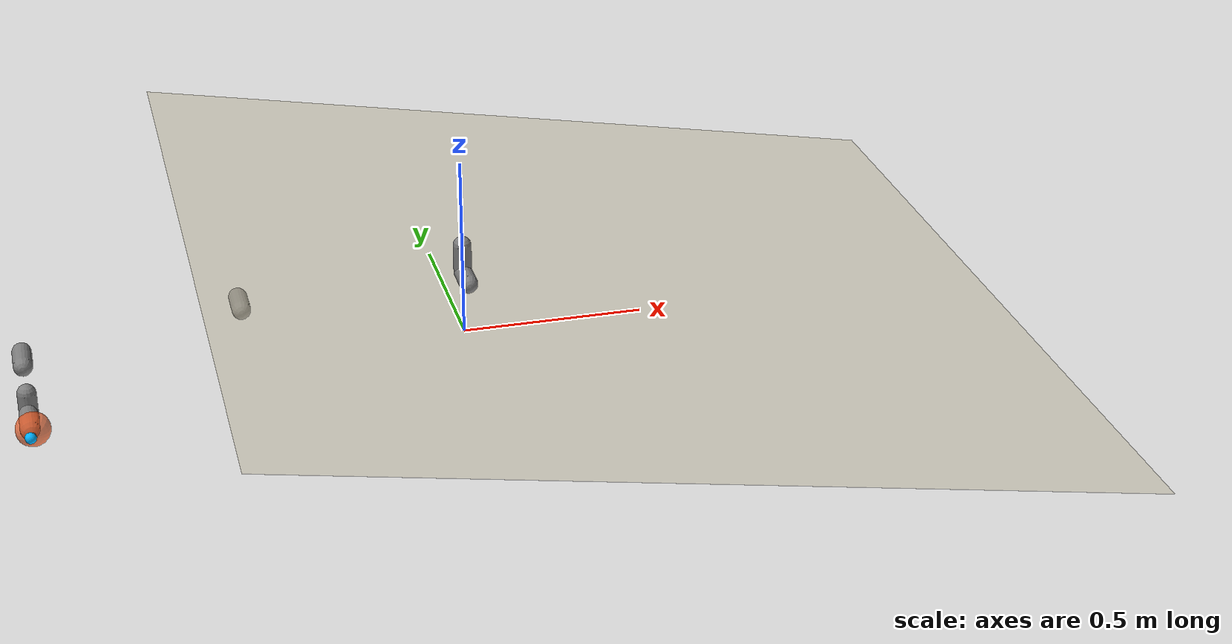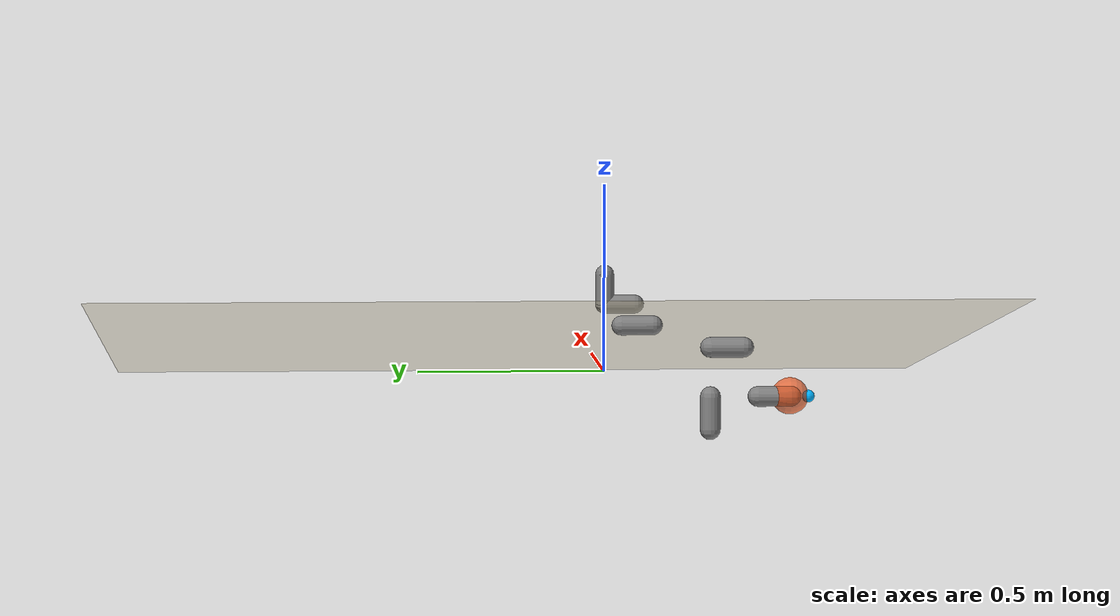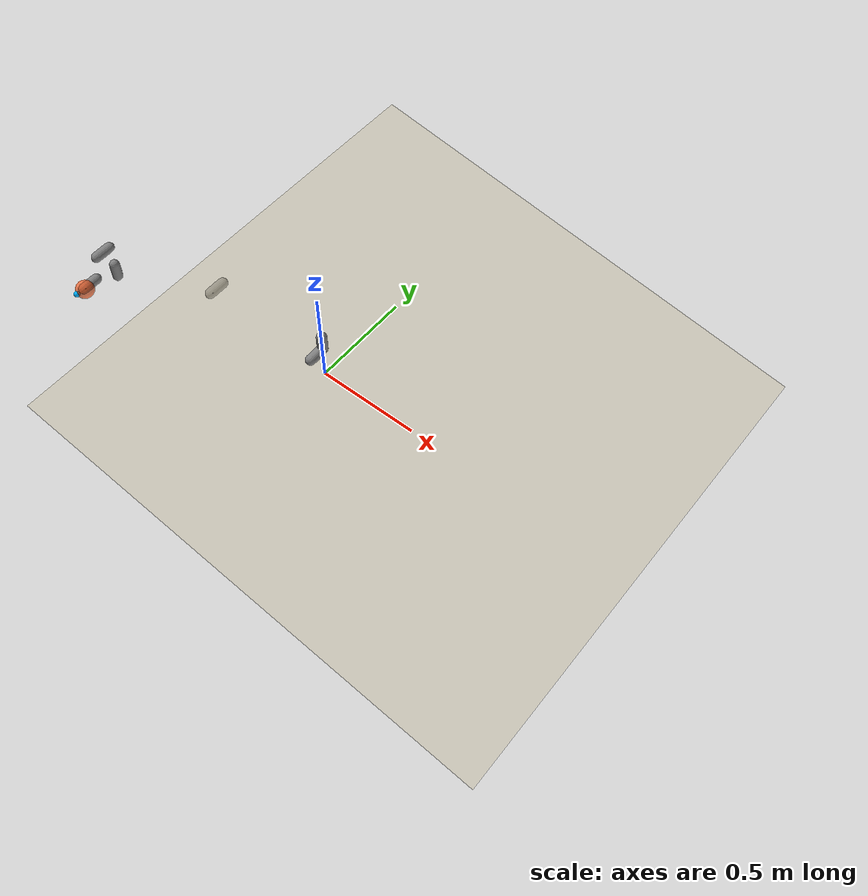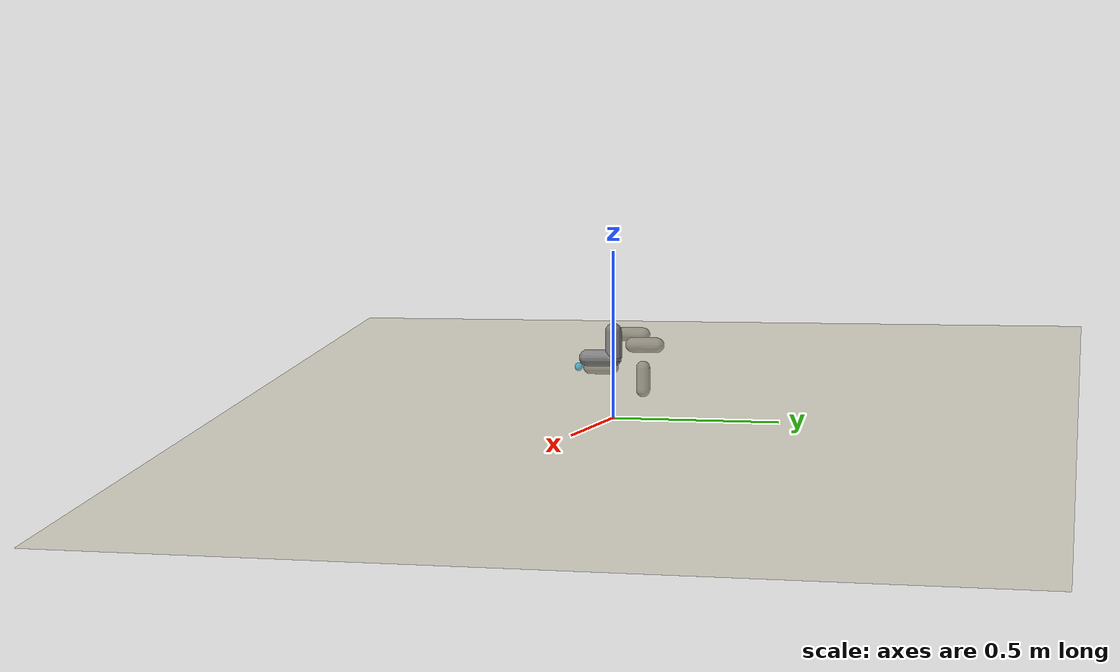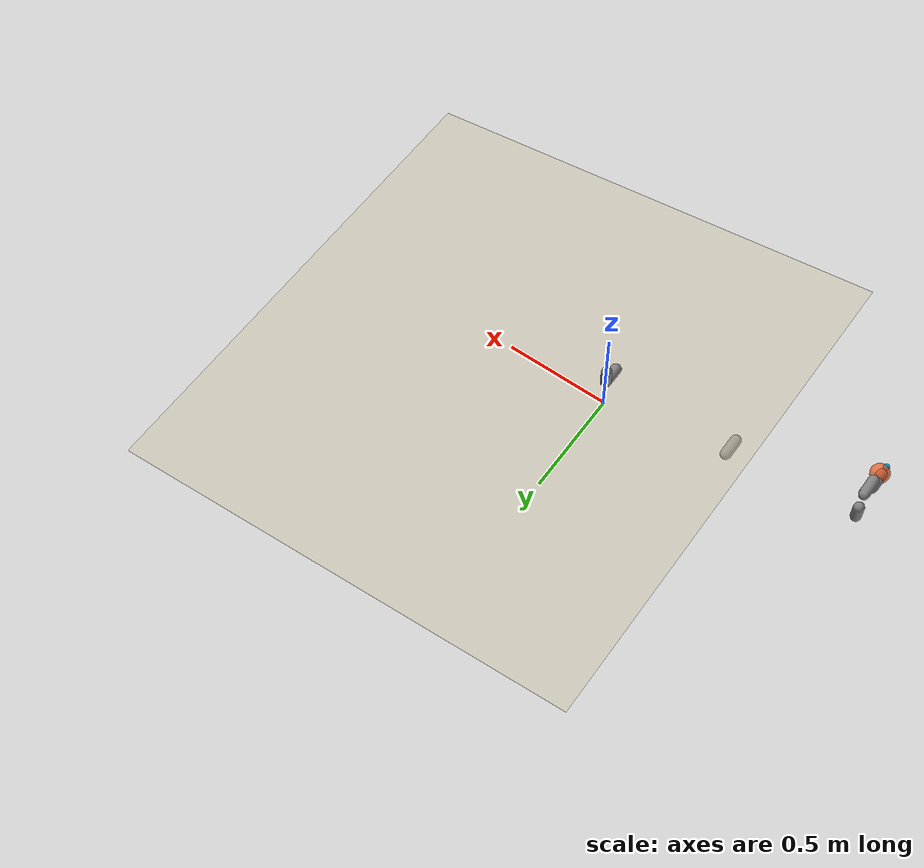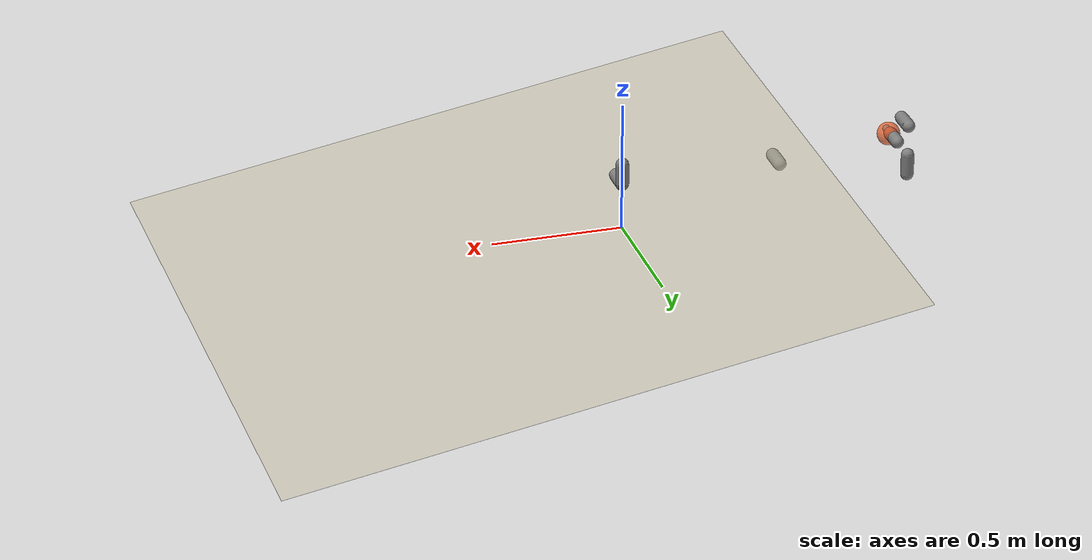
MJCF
<mujoco model="ur10e_calibrated_20260525T1641_diagnostic_contact_overlay">
  <compiler angle="radian" autolimits="true" />
  <option timestep="0.002" gravity="0 0 -9.81" />
  <default>
    <joint damping="8" armature="0.02" limited="true" />
    <geom type="capsule" size="0.025" density="900" friction="1 0.005 0.0001" contype="0" conaffinity="0" />
  </default>
  <worldbody>
    <geom name="diagnostic_contact_plane_unaccepted" type="plane" pos="0.45619207276771306 0.16055309891221037 0.044663962326398465" euler="0 0.17453292519999999 0" size="1.2 1.2 0.02" rgba="0.78 0.74 0.62 0.45" friction="1 0.005 0.0001" contype="1" conaffinity="1" />
    <body name="base" pos="0 0 0">
      <body name="shoulder_link" pos="0 0 0.18089377267755391" quat="0.99999999999999445 0 0 -1.0547108770034266e-07">
        <joint name="shoulder_pan_joint" axis="0 0 1" range="-6.283185307179586 6.283185307179586" />
        <geom name="shoulder_pan_joint_primitive" fromto="0 0 0 0 0 0.08" contype="0" conaffinity="0" />
        <body name="upper_arm_link" pos="2.0416891277915125e-05 0 0" quat="0.70688438899691852 0.70732910345355271 1.5242124891222752e-07 1.5232541808530616e-07">
          <joint name="shoulder_lift_joint" axis="0 0 1" range="-6.283185307179586 6.283185307179586" />
          <geom name="shoulder_lift_joint_primitive" fromto="0 0 0 0 0 0.08" contype="0" conaffinity="0" />
          <body name="forearm_link" pos="-0.61231665716315808 0 0" quat="0.99999970594436793 -0.00071323727481014244 -0.00028178440713331278 -1.1469642345861922e-06">
            <joint name="elbow_joint" axis="0 0 1" range="-3.141592653589793 3.141592653589793" />
            <geom name="elbow_joint_primitive" fromto="0 0 0 0 0 0.08" contype="0" conaffinity="0" />
            <body name="wrist_1_link" pos="-0.57126101201600177 -0.00056244594997925451 0.17399893501546188" quat="0.9999985897803042 0.0016162278654918167 0.00045633505967977484 -1.7896990794635787e-06">
              <joint name="wrist_1_joint" axis="0 0 1" range="-6.283185307179586 6.283185307179586" />
              <geom name="wrist_1_joint_primitive" fromto="0 0 0 0 0 0.08" contype="0" conaffinity="0" />
              <body name="wrist_2_link" pos="-9.504674691390763e-06 -0.11977755060957024 0.00024639437567913606" quat="0.70783370061372053 0.70637911370217743 -6.3662250807396438e-07 -6.3793345109291207e-07">
                <joint name="wrist_2_joint" axis="0 0 1" range="-6.283185307179586 6.283185307179586" />
                <geom name="wrist_2_joint_primitive" fromto="0 0 0 0 0 0.08" contype="0" conaffinity="0" />
                <body name="wrist_3_link" pos="-3.6037236572076613e-05 0.11560209879378842 -7.8715339920216169e-05" quat="0.70686600002203703 -0.7073474803891262 -1.0398830574088319e-08 1.0391752339318872e-08">
                  <joint name="wrist_3_joint" axis="0 0 1" range="-6.283185307179586 6.283185307179586" />
                  <geom name="wrist_3_joint_primitive" fromto="0 0 0 0 0 0.08" contype="0" conaffinity="0" />
                  <body name="flange" pos="0 0 0" quat="0.5 -0.5 -0.5 -0.5">
                    <body name="tool0" pos="0 0 0" quat="0.5 0.5 0.5 0.5">
                      <site name="tcp_site_live_offset_122p54mm" pos="0 0 0.12254000000000001" size="0.012" rgba="0 0.7 1 1" />
                      <body name="tcp_live_offset_body" pos="0 0 0.12254000000000001">
                        <geom name="tcp_live_offset_marker" type="sphere" size="0.015" rgba="0 0.7 1 1" density="300" contype="0" conaffinity="0" />
                        <body name="diagnostic_contact_tip_center_unaccepted" pos="0.0076361384237895761 0.00021697283048135996 -0.044346841068598757">
                          <geom name="diagnostic_contact_tip_unaccepted" type="sphere" size="0.044999999999999998" rgba="0.95 0.35 0.12 0.72" density="700" friction="1 0.005 0.0001" contype="1" conaffinity="1" />
                        </body>
                      </body>
                    </body>
                  </body>
                </body>
              </body>
            </body>
          </body>
        </body>
      </body>
    </body>
  </worldbody>
  <actuator>
    <motor name="shoulder_pan_joint_motor" joint="shoulder_pan_joint" gear="10" ctrllimited="true" ctrlrange="-1 1" />
    <motor name="shoulder_lift_joint_motor" joint="shoulder_lift_joint" gear="10" ctrllimited="true" ctrlrange="-1 1" />
    <motor name="elbow_joint_motor" joint="elbow_joint" gear="10" ctrllimited="true" ctrlrange="-1 1" />
    <motor name="wrist_1_joint_motor" joint="wrist_1_joint" gear="10" ctrllimited="true" ctrlrange="-1 1" />
    <motor name="wrist_2_joint_motor" joint="wrist_2_joint" gear="10" ctrllimited="true" ctrlrange="-1 1" />
    <motor name="wrist_3_joint_motor" joint="wrist_3_joint" gear="10" ctrllimited="true" ctrlrange="-1 1" />
  </actuator>
</mujoco>
